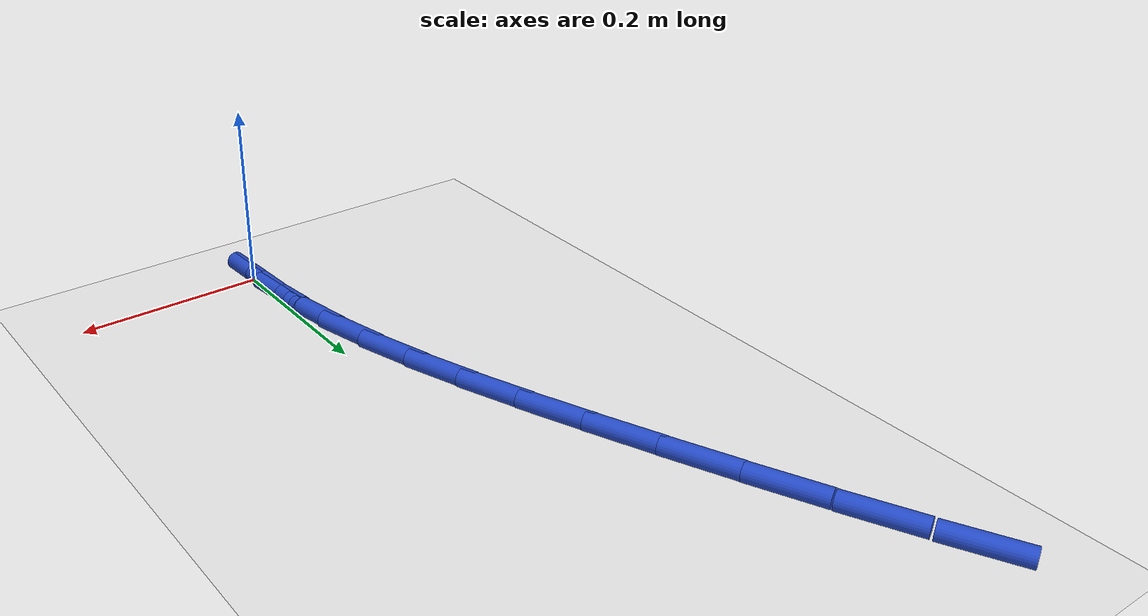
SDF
<sdf version="1.6">
 <world name="default">
  <model name="ground_plane">
   <static>1</static>
   <link name="link">
    <collision name="collision">
     <geometry><plane><normal>0 0 1</normal><size>100 100</size></plane></geometry>
     <surface><friction><ode><mu>100</mu><mu2>50</mu2></ode></friction></surface>
    </collision>
    <visual name="visual">
     <cast_shadows>0</cast_shadows>
     <geometry><plane><normal>0 0 1</normal><size>100 100</size></plane></geometry>
     <material>
      <script><uri>file://media/materials/scripts/gazebo.material</uri><name>Gazebo/WhiteGlow</name></script>
     </material>
    </visual>
   </link>
  </model>
  <model name="line">
   <link name="link_0">
    <pose>-1.3877787807814457e-17 -6.938893903907228e-17 0.01 0 1.57 -1.517357948451083</pose>
    <collision name="collision">
     <geometry><cylinder><radius>0.01</radius><length>0.08</length></cylinder></geometry>
    </collision>
    <visual name="visual">
     <material>
      <script><name>Gazebo/Blue</name><uri>file://media/materials/scripts/gazebo.material</uri></script>
     </material>
     <geometry><cylinder><radius>0.01</radius><length>0.08</length></cylinder></geometry>
    </visual>
   </link>
   <link name="link_1">
    <pose>-0.0032127212649232643 0.06006287307367114 0.01 0 1.57 -1.4477153951873447</pose>
    <collision name="collision">
     <geometry><cylinder><radius>0.01</radius><length>0.08</length></cylinder></geometry>
    </collision>
    <visual name="visual">
     <material>
      <script><name>Gazebo/Blue</name><uri>file://media/materials/scripts/gazebo.material</uri></script>
     </material>
     <geometry><cylinder><radius>0.01</radius><length>0.08</length></cylinder></geometry>
    </visual>
   </link>
   <link name="link_2">
    <pose>-0.01048534321421816 0.11885232648583186 0.01 0 1.57 -1.3821396795652197</pose>
    <collision name="collision">
     <geometry><cylinder><radius>0.01</radius><length>0.08</length></cylinder></geometry>
    </collision>
    <visual name="visual">
     <material>
      <script><name>Gazebo/Blue</name><uri>file://media/materials/scripts/gazebo.material</uri></script>
     </material>
     <geometry><cylinder><radius>0.01</radius><length>0.08</length></cylinder></geometry>
    </visual>
   </link>
   <link name="link_3">
    <pose>-0.021599720982186363 0.17706498688944483 0.01 0 1.57 -1.3233205272547413</pose>
    <collision name="collision">
     <geometry><cylinder><radius>0.01</radius><length>0.08</length></cylinder></geometry>
    </collision>
    <visual name="visual">
     <material>
      <script><name>Gazebo/Blue</name><uri>file://media/materials/scripts/gazebo.material</uri></script>
     </material>
     <geometry><cylinder><radius>0.01</radius><length>0.08</length></cylinder></geometry>
    </visual>
   </link>
   <link name="link_4">
    <pose>-0.03633770970312953 0.23539748093747287 0.01 0 1.57 -1.2731659582619341</pose>
    <collision name="collision">
     <geometry><cylinder><radius>0.01</radius><length>0.08</length></cylinder></geometry>
    </collision>
    <visual name="visual">
     <material>
      <script><name>Gazebo/Blue</name><uri>file://media/materials/scripts/gazebo.material</uri></script>
     </material>
     <geometry><cylinder><radius>0.01</radius><length>0.08</length></cylinder></geometry>
    </visual>
   </link>
   <link name="link_5">
    <pose>-0.05448116451134936 0.29454643528287877 0.01 0 1.57 -1.2326674535901074</pose>
    <collision name="collision">
     <geometry><cylinder><radius>0.01</radius><length>0.08</length></cylinder></geometry>
    </collision>
    <visual name="visual">
     <material>
      <script><name>Gazebo/Blue</name><uri>file://media/materials/scripts/gazebo.material</uri></script>
     </material>
     <geometry><cylinder><radius>0.01</radius><length>0.08</length></cylinder></geometry>
    </visual>
   </link>
   <link name="link_6">
    <pose>-0.07581194054114751 0.35520847657862537 0.01 0 1.57 -1.2019815133433283</pose>
    <collision name="collision">
     <geometry><cylinder><radius>0.01</radius><length>0.08</length></cylinder></geometry>
    </collision>
    <visual name="visual">
     <material>
      <script><name>Gazebo/Blue</name><uri>file://media/materials/scripts/gazebo.material</uri></script>
     </material>
     <geometry><cylinder><radius>0.01</radius><length>0.08</length></cylinder></geometry>
    </visual>
   </link>
   <link name="link_7">
    <pose>-0.10011189292682562 0.41808023147767515 0.01 0 1.57 -1.1806328033113558</pose>
    <collision name="collision">
     <geometry><cylinder><radius>0.01</radius><length>0.08</length></cylinder></geometry>
    </collision>
    <visual name="visual">
     <material>
      <script><name>Gazebo/Blue</name><uri>file://media/materials/scripts/gazebo.material</uri></script>
     </material>
     <geometry><cylinder><radius>0.01</radius><length>0.08</length></cylinder></geometry>
    </visual>
   </link>
   <link name="link_8">
    <pose>-0.12716287680268537 0.4838583266329912 0.01 0 1.57 -1.166996702385589</pose>
    <collision name="collision">
     <geometry><cylinder><radius>0.01</radius><length>0.08</length></cylinder></geometry>
    </collision>
    <visual name="visual">
     <material>
      <script><name>Gazebo/Blue</name><uri>file://media/materials/scripts/gazebo.material</uri></script>
     </material>
     <geometry><cylinder><radius>0.01</radius><length>0.08</length></cylinder></geometry>
    </visual>
   </link>
   <link name="link_9">
    <pose>-0.15675001082927661 0.5531037502118237 0.01 0 1.57 -1.1540392511049267</pose>
    <collision name="collision">
     <geometry><cylinder><radius>0.01</radius><length>0.08</length></cylinder></geometry>
    </collision>
    <visual name="visual">
     <material>
      <script><name>Gazebo/Blue</name><uri>file://media/materials/scripts/gazebo.material</uri></script>
     </material>
     <geometry><cylinder><radius>0.01</radius><length>0.08</length></cylinder></geometry>
    </visual>
   </link>
   <link name="link_10">
    <pose>-0.1886856851725092 0.6252440336818749 0.01 0 1.57 -1.1383527913260167</pose>
    <collision name="collision">
     <geometry><cylinder><radius>0.01</radius><length>0.08</length></cylinder></geometry>
    </collision>
    <visual name="visual">
     <material>
      <script><name>Gazebo/Blue</name><uri>file://media/materials/scripts/gazebo.material</uri></script>
     </material>
     <geometry><cylinder><radius>0.01</radius><length>0.08</length></cylinder></geometry>
    </visual>
   </link>
   <link name="link_11">
    <pose>-0.2227958656218631 0.6991424792436014 0.01 0 1.57 -1.1195401301856653</pose>
    <collision name="collision">
     <geometry><cylinder><radius>0.01</radius><length>0.08</length></cylinder></geometry>
    </collision>
    <visual name="visual">
     <material>
      <script><name>Gazebo/Blue</name><uri>file://media/materials/scripts/gazebo.material</uri></script>
     </material>
     <geometry><cylinder><radius>0.01</radius><length>0.08</length></cylinder></geometry>
    </visual>
   </link>
   <link name="link_12">
    <pose>-0.25890661696670103 0.7736582744701624 0.01 0 1.57 -1.0970241669208047</pose>
    <collision name="collision">
     <geometry><cylinder><radius>0.01</radius><length>0.08</length></cylinder></geometry>
    </collision>
    <visual name="visual">
     <material>
      <script><name>Gazebo/Blue</name><uri>file://media/materials/scripts/gazebo.material</uri></script>
     </material>
     <geometry><cylinder><radius>0.01</radius><length>0.08</length></cylinder></geometry>
    </visual>
   </link>
   <link name="link_120">
    <pose>-3.469446951953614e-18 4.163336342344337e-17 0.01 0 1.57 -1.516478066252618</pose>
    <collision name="collision">
     <geometry><cylinder><radius>0.01</radius><length>0.08</length></cylinder></geometry>
    </collision>
    <visual name="visual">
     <material>
      <script><name>Gazebo/Blue</name><uri>file://media/materials/scripts/gazebo.material</uri></script>
     </material>
     <geometry><cylinder><radius>0.01</radius><length>0.08</length></cylinder></geometry>
    </visual>
   </link>
   <link name="link_121">
    <pose>-0.003252720277306869 0.059823723990133755 0.01 0 1.57 -1.5164780662526183</pose>
    <collision name="collision">
     <geometry><cylinder><radius>0.01</radius><length>0.08</length></cylinder></geometry>
    </collision>
    <visual name="visual">
     <material>
      <script><name>Gazebo/Blue</name><uri>file://media/materials/scripts/gazebo.material</uri></script>
     </material>
     <geometry><cylinder><radius>0.01</radius><length>0.08</length></cylinder></geometry>
    </visual>
   </link>
  </model>
 </world>
</sdf>
